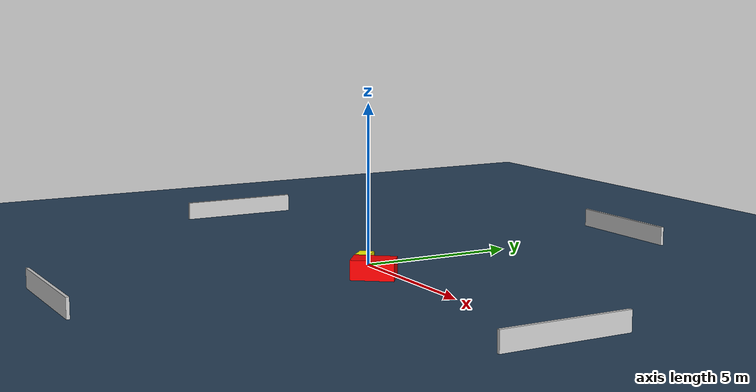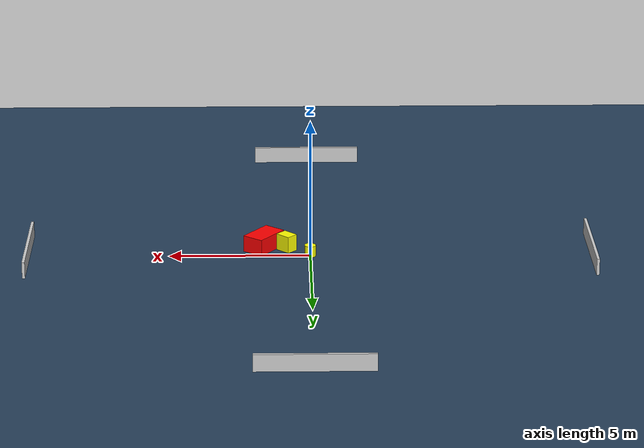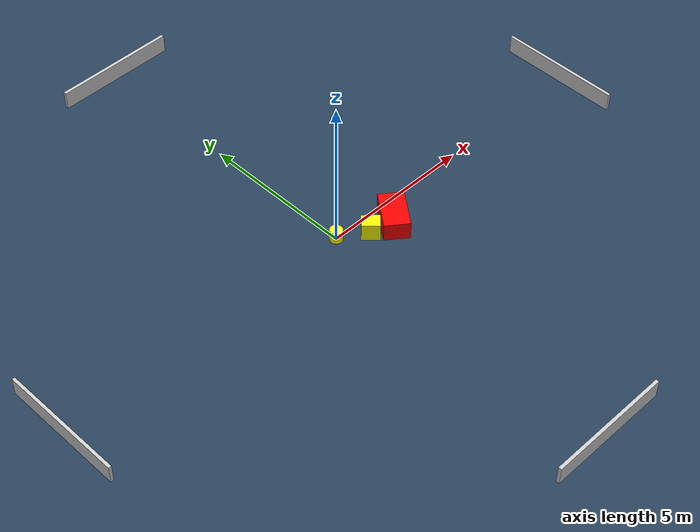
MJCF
<?xml version="1.0" ?>
<mujoco model="generated_environment">
  <option timestep="0.01" integrator="RK4" cone="elliptic"/>
  <default>
    <geom density="1"/>
  </default>
  <asset>
    <texture builtin="gradient" height="3072" name="skybox" rgb1="0.3 0.5 0.7" rgb2="0 0 0" type="skybox" width="512"/>
    <texture builtin="checker" height="300" name="groundplane" rgb1="0.2 0.3 0.4" rgb2="0.1 0.2 0.3" type="2d" width="300"/>
    <material name="groundplane" reflectance="0.2" texrepeat="5 5" texture="groundplane"/>
  </asset>
  <worldbody>
    <light dir="0 0 -1" directional="true" pos="0 0 1.5"/>
    <geom condim="3" friction="0.5 0.005 0.001" material="groundplane" name="floor" pos="0 0 0" size="0 0 0.05" type="plane"/>
    <body name="walls">
      <geom name="wall_1" condim="4" pos="-10.0 0.0 0.3" rgba="0.800000011920929 0.800000011920929 0.800000011920929 1.0" size="0.05 2.0 0.3" type="box"/>
      <geom name="wall_2" condim="4" pos="10.0 0.0 0.3" rgba="0.800000011920929 0.800000011920929 0.800000011920929 1.0" size="0.05 2.0 0.3" type="box"/>
      <geom name="wall_3" condim="4" pos="0.0 -10.0 0.3" rgba="0.800000011920929 0.800000011920929 0.800000011920929 1.0" size="2.0 0.05 0.3" type="box"/>
      <geom name="wall_4" condim="4" pos="0.0 10.0 0.3" rgba="0.800000011920929 0.800000011920929 0.800000011920929 1.0" size="2.0 0.05 0.3" type="box"/>
    </body>
    <body name="robot">
      <joint name="joint_x" type="slide" pos="0 0 0" axis="1 0 0"/>
      <joint name="joint_y" type="slide" pos="0 0 0" axis="0 1 0"/>
      <geom name="robot" type="cylinder" pos="0.0 0.0 0.2" size="0.2 0.2 0.0" mass="5.0" friction="1.0 0.005 0.0001" condim="4" rgba="1.0 1.0 0.0 1.0"/>
    </body>
    <body name="obstacle_1_movable">
      <geom name="obstacle_1_movable" condim="4" pos="0.8327755908702639 -0.5812010192455848 0.3" euler="0 0 135.51554120132474" friction="0.0 0.005 0.001" rgba="1.0 1.0 0.0 1.0" size="0.28302504464437295 0.21733733586512638 0.3" type="box" mass="0.1"/>
      <joint type="free"/>
    </body>
    <body name="obstacle_2_static">
      <geom name="obstacle_2_static" condim="4" pos="1.6503258110573051 -0.72153639575517 0.3" euler="0 0 142.47061884026448" friction="0.0 0.005 0.001" rgba="1.0 0.0 0.0 1.0" size="0.3983079509614841 0.6554100312476516 0.3" type="box"/>
    </body>
  </worldbody>
  <actuator>
    <motor name="actuator_x" joint="joint_x" gear="1" ctrlrange="-1 1"/>
    <motor name="actuator_y" joint="joint_y" gear="1" ctrlrange="-1 1"/>
  </actuator>
</mujoco>
